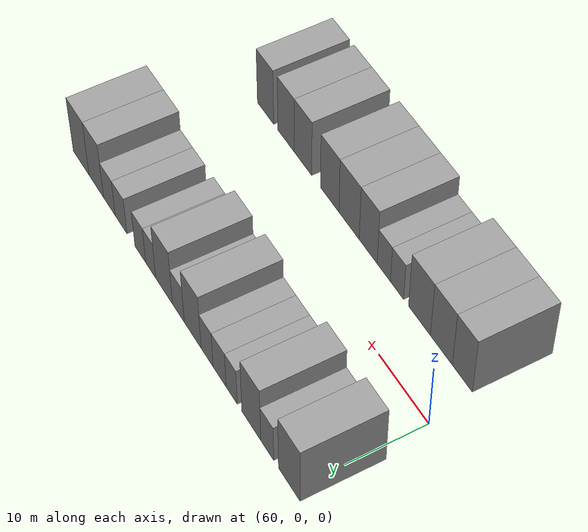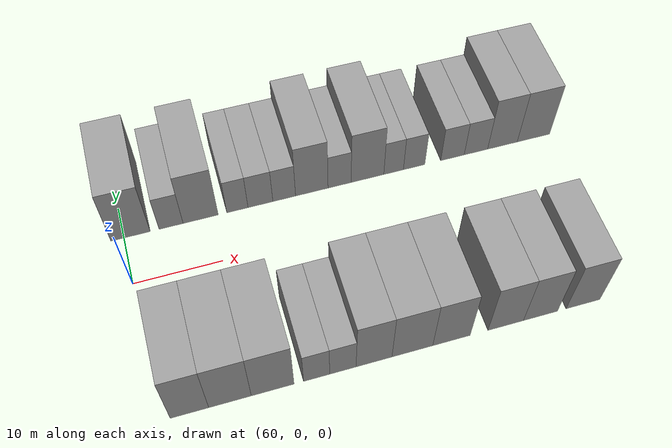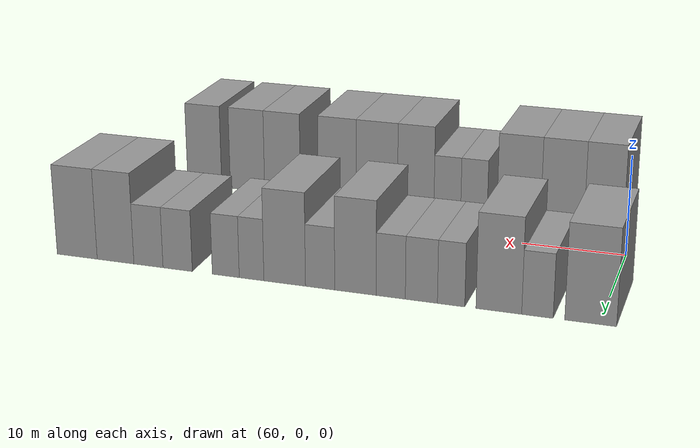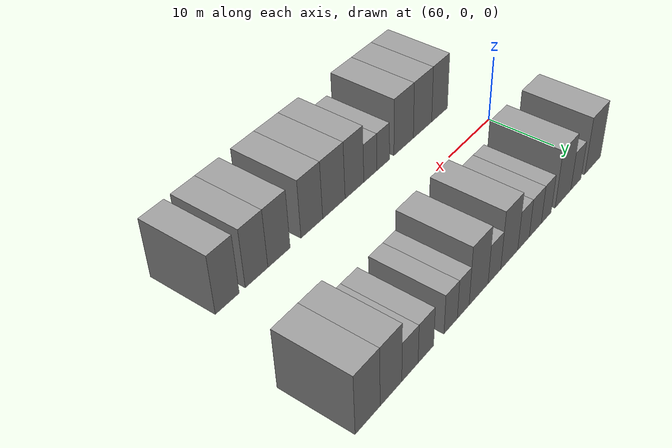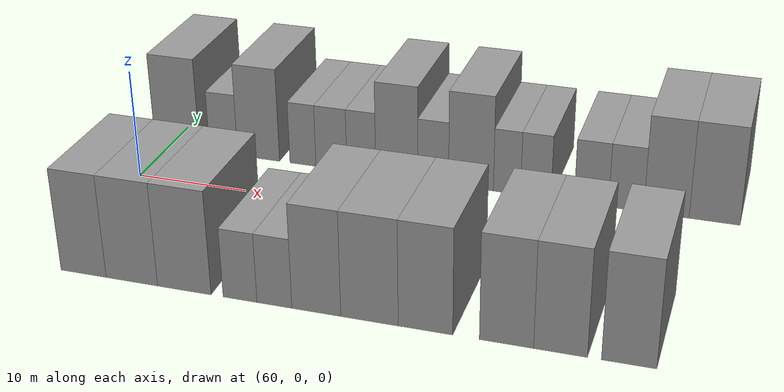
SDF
<sdf version="1.6">
 <world name="default">
  <model name="building_13">
   <static>1</static>
   <pose>60.7514 11.0000 0 0.000000 0.000000 1.570796</pose>
   <link name="link">
    <pose>0 0 4.50 0 0 0</pose>
    <collision name="collision"><geometry><box><size>10.0000 4.4428 9.0000</size></box></geometry></collision>
    <visual name="visual">
     <cast_shadows>0</cast_shadows>
     <geometry><box><size>10.0000 4.4428 9.0000</size></box></geometry>
     <material>
      <script>
       <uri>model://grey_wall/materials/scripts</uri>
       <uri>model://grey_wall/materials/textures</uri>
       <name>vrc/grey_wall</name>
      </script>
     </material>
    </visual>
   </link>
  </model>
  <model name="building_14">
   <static>1</static>
   <pose>65.3488 11.0000 0 0.000000 0.000000 1.570796</pose>
   <link name="link">
    <pose>0 0 3.00 0 0 0</pose>
    <collision name="collision"><geometry><box><size>10.0000 2.7521 6.0000</size></box></geometry></collision>
    <visual name="visual">
     <cast_shadows>0</cast_shadows>
     <geometry><box><size>10.0000 2.7521 6.0000</size></box></geometry>
     <material>
      <script>
       <uri>model://grey_wall/materials/scripts</uri>
       <uri>model://grey_wall/materials/textures</uri>
       <name>vrc/grey_wall</name>
      </script>
     </material>
    </visual>
   </link>
  </model>
  <model name="building_15">
   <static>1</static>
   <pose>68.7537 11.0000 0 0.000000 0.000000 1.570796</pose>
   <link name="link">
    <pose>0 0 4.50 0 0 0</pose>
    <collision name="collision"><geometry><box><size>10.0000 4.0577 9.0000</size></box></geometry></collision>
    <visual name="visual">
     <cast_shadows>0</cast_shadows>
     <geometry><box><size>10.0000 4.0577 9.0000</size></box></geometry>
     <material>
      <script>
       <uri>model://grey_wall/materials/scripts</uri>
       <uri>model://grey_wall/materials/textures</uri>
       <name>vrc/grey_wall</name>
      </script>
     </material>
    </visual>
   </link>
  </model>
  <model name="building_16">
   <static>1</static>
   <pose>73.0201 11.0000 0 0.000000 0.000000 1.570796</pose>
   <link name="link">
    <pose>0 0 3.00 0 0 0</pose>
    <collision name="collision"><geometry><box><size>10.0000 2.4750 6.0000</size></box></geometry></collision>
    <visual name="visual">
     <cast_shadows>0</cast_shadows>
     <geometry><box><size>10.0000 2.4750 6.0000</size></box></geometry>
     <material>
      <script>
       <uri>model://grey_wall/materials/scripts</uri>
       <uri>model://grey_wall/materials/textures</uri>
       <name>vrc/grey_wall</name>
      </script>
     </material>
    </visual>
   </link>
  </model>
  <model name="building_17">
   <static>1</static>
   <pose>75.7228 11.0000 0 0.000000 0.000000 1.570796</pose>
   <link name="link">
    <pose>0 0 3.00 0 0 0</pose>
    <collision name="collision"><geometry><box><size>10.0000 2.9305 6.0000</size></box></geometry></collision>
    <visual name="visual">
     <cast_shadows>0</cast_shadows>
     <geometry><box><size>10.0000 2.9305 6.0000</size></box></geometry>
     <material>
      <script>
       <uri>model://grey_wall/materials/scripts</uri>
       <uri>model://grey_wall/materials/textures</uri>
       <name>vrc/grey_wall</name>
      </script>
     </material>
    </visual>
   </link>
  </model>
  <model name="building_18">
   <static>1</static>
   <pose>78.5389 11.0000 0 0.000000 0.000000 1.570796</pose>
   <link name="link">
    <pose>0 0 3.00 0 0 0</pose>
    <collision name="collision"><geometry><box><size>10.0000 2.7016 6.0000</size></box></geometry></collision>
    <visual name="visual">
     <cast_shadows>0</cast_shadows>
     <geometry><box><size>10.0000 2.7016 6.0000</size></box></geometry>
     <material>
      <script>
       <uri>model://grey_wall/materials/scripts</uri>
       <uri>model://grey_wall/materials/textures</uri>
       <name>vrc/grey_wall</name>
      </script>
     </material>
    </visual>
   </link>
  </model>
  <model name="building_19">
   <static>1</static>
   <pose>81.8342 11.0000 0 0.000000 0.000000 1.570796</pose>
   <link name="link">
    <pose>0 0 4.50 0 0 0</pose>
    <collision name="collision"><geometry><box><size>10.0000 3.8890 9.0000</size></box></geometry></collision>
    <visual name="visual">
     <cast_shadows>0</cast_shadows>
     <geometry><box><size>10.0000 3.8890 9.0000</size></box></geometry>
     <material>
      <script>
       <uri>model://grey_wall/materials/scripts</uri>
       <uri>model://grey_wall/materials/textures</uri>
       <name>vrc/grey_wall</name>
      </script>
     </material>
    </visual>
   </link>
  </model>
  <model name="building_20">
   <static>1</static>
   <pose>85.1712 11.0000 0 0.000000 0.000000 1.570796</pose>
   <link name="link">
    <pose>0 0 3.00 0 0 0</pose>
    <collision name="collision"><geometry><box><size>10.0000 2.7850 6.0000</size></box></geometry></collision>
    <visual name="visual">
     <cast_shadows>0</cast_shadows>
     <geometry><box><size>10.0000 2.7850 6.0000</size></box></geometry>
     <material>
      <script>
       <uri>model://grey_wall/materials/scripts</uri>
       <uri>model://grey_wall/materials/textures</uri>
       <name>vrc/grey_wall</name>
      </script>
     </material>
    </visual>
   </link>
  </model>
  <model name="building_21">
   <static>1</static>
   <pose>88.5730 11.0000 0 0.000000 0.000000 1.570796</pose>
   <link name="link">
    <pose>0 0 4.50 0 0 0</pose>
    <collision name="collision"><geometry><box><size>10.0000 4.0187 9.0000</size></box></geometry></collision>
    <visual name="visual">
     <cast_shadows>0</cast_shadows>
     <geometry><box><size>10.0000 4.0187 9.0000</size></box></geometry>
     <material>
      <script>
       <uri>model://grey_wall/materials/scripts</uri>
       <uri>model://grey_wall/materials/textures</uri>
       <name>vrc/grey_wall</name>
      </script>
     </material>
    </visual>
   </link>
  </model>
  <model name="building_22">
   <static>1</static>
   <pose>91.7902 11.0000 0 0.000000 0.000000 1.570796</pose>
   <link name="link">
    <pose>0 0 3.00 0 0 0</pose>
    <collision name="collision"><geometry><box><size>10.0000 2.4156 6.0000</size></box></geometry></collision>
    <visual name="visual">
     <cast_shadows>0</cast_shadows>
     <geometry><box><size>10.0000 2.4156 6.0000</size></box></geometry>
     <material>
      <script>
       <uri>model://grey_wall/materials/scripts</uri>
       <uri>model://grey_wall/materials/textures</uri>
       <name>vrc/grey_wall</name>
      </script>
     </material>
    </visual>
   </link>
  </model>
  <model name="building_23">
   <static>1</static>
   <pose>94.3314 11.0000 0 0.000000 0.000000 1.570796</pose>
   <link name="link">
    <pose>0 0 3.00 0 0 0</pose>
    <collision name="collision"><geometry><box><size>10.0000 2.6670 6.0000</size></box></geometry></collision>
    <visual name="visual">
     <cast_shadows>0</cast_shadows>
     <geometry><box><size>10.0000 2.6670 6.0000</size></box></geometry>
     <material>
      <script>
       <uri>model://grey_wall/materials/scripts</uri>
       <uri>model://grey_wall/materials/textures</uri>
       <name>vrc/grey_wall</name>
      </script>
     </material>
    </visual>
   </link>
  </model>
  <model name="building_24">
   <static>1</static>
   <pose>99.1431 11.0000 0 0.000000 0.000000 1.570796</pose>
   <link name="link">
    <pose>0 0 3.00 0 0 0</pose>
    <collision name="collision"><geometry><box><size>10.0000 2.9564 6.0000</size></box></geometry></collision>
    <visual name="visual">
     <cast_shadows>0</cast_shadows>
     <geometry><box><size>10.0000 2.9564 6.0000</size></box></geometry>
     <material>
      <script>
       <uri>model://grey_wall/materials/scripts</uri>
       <uri>model://grey_wall/materials/textures</uri>
       <name>vrc/grey_wall</name>
      </script>
     </material>
    </visual>
   </link>
  </model>
  <model name="building_25">
   <static>1</static>
   <pose>102.1106 11.0000 0 0.000000 0.000000 1.570796</pose>
   <link name="link">
    <pose>0 0 3.00 0 0 0</pose>
    <collision name="collision"><geometry><box><size>10.0000 2.9786 6.0000</size></box></geometry></collision>
    <visual name="visual">
     <cast_shadows>0</cast_shadows>
     <geometry><box><size>10.0000 2.9786 6.0000</size></box></geometry>
     <material>
      <script>
       <uri>model://grey_wall/materials/scripts</uri>
       <uri>model://grey_wall/materials/textures</uri>
       <name>vrc/grey_wall</name>
      </script>
     </material>
    </visual>
   </link>
  </model>
  <model name="building_26">
   <static>1</static>
   <pose>105.5033 11.0000 0 0.000000 0.000000 1.570796</pose>
   <link name="link">
    <pose>0 0 4.50 0 0 0</pose>
    <collision name="collision"><geometry><box><size>10.0000 3.8068 9.0000</size></box></geometry></collision>
    <visual name="visual">
     <cast_shadows>0</cast_shadows>
     <geometry><box><size>10.0000 3.8068 9.0000</size></box></geometry>
     <material>
      <script>
       <uri>model://grey_wall/materials/scripts</uri>
       <uri>model://grey_wall/materials/textures</uri>
       <name>vrc/grey_wall</name>
      </script>
     </material>
    </visual>
   </link>
  </model>
  <model name="building_27">
   <static>1</static>
   <pose>109.5099 11.0000 0 0.000000 0.000000 1.570796</pose>
   <link name="link">
    <pose>0 0 4.50 0 0 0</pose>
    <collision name="collision"><geometry><box><size>10.0000 4.2064 9.0000</size></box></geometry></collision>
    <visual name="visual">
     <cast_shadows>0</cast_shadows>
     <geometry><box><size>10.0000 4.2064 9.0000</size></box></geometry>
     <material>
      <script>
       <uri>model://grey_wall/materials/scripts</uri>
       <uri>model://grey_wall/materials/textures</uri>
       <name>vrc/grey_wall</name>
      </script>
     </material>
    </visual>
   </link>
  </model>
  <model name="building_66">
   <static>1</static>
   <pose>63.0855 -11.0000 0 0.000000 0.000000 1.570796</pose>
   <link name="link">
    <pose>0 0 4.50 0 0 0</pose>
    <collision name="collision"><geometry><box><size>10.0000 3.9080 9.0000</size></box></geometry></collision>
    <visual name="visual">
     <cast_shadows>0</cast_shadows>
     <geometry><box><size>10.0000 3.9080 9.0000</size></box></geometry>
     <material>
      <script>
       <uri>model://grey_wall/materials/scripts</uri>
       <uri>model://grey_wall/materials/textures</uri>
       <name>vrc/grey_wall</name>
      </script>
     </material>
    </visual>
   </link>
  </model>
  <model name="building_67">
   <static>1</static>
   <pose>67.2296 -11.0000 0 0.000000 0.000000 1.570796</pose>
   <link name="link">
    <pose>0 0 4.50 0 0 0</pose>
    <collision name="collision"><geometry><box><size>10.0000 4.3804 9.0000</size></box></geometry></collision>
    <visual name="visual">
     <cast_shadows>0</cast_shadows>
     <geometry><box><size>10.0000 4.3804 9.0000</size></box></geometry>
     <material>
      <script>
       <uri>model://grey_wall/materials/scripts</uri>
       <uri>model://grey_wall/materials/textures</uri>
       <name>vrc/grey_wall</name>
      </script>
     </material>
    </visual>
   </link>
  </model>
  <model name="building_68">
   <static>1</static>
   <pose>71.6520 -11.0000 0 0.000000 0.000000 1.570796</pose>
   <link name="link">
    <pose>0 0 4.50 0 0 0</pose>
    <collision name="collision"><geometry><box><size>10.0000 4.4644 9.0000</size></box></geometry></collision>
    <visual name="visual">
     <cast_shadows>0</cast_shadows>
     <geometry><box><size>10.0000 4.4644 9.0000</size></box></geometry>
     <material>
      <script>
       <uri>model://grey_wall/materials/scripts</uri>
       <uri>model://grey_wall/materials/textures</uri>
       <name>vrc/grey_wall</name>
      </script>
     </material>
    </visual>
   </link>
  </model>
  <model name="building_69">
   <static>1</static>
   <pose>76.2661 -11.0000 0 0.000000 0.000000 1.570796</pose>
   <link name="link">
    <pose>0 0 3.00 0 0 0</pose>
    <collision name="collision"><geometry><box><size>10.0000 2.7637 6.0000</size></box></geometry></collision>
    <visual name="visual">
     <cast_shadows>0</cast_shadows>
     <geometry><box><size>10.0000 2.7637 6.0000</size></box></geometry>
     <material>
      <script>
       <uri>model://grey_wall/materials/scripts</uri>
       <uri>model://grey_wall/materials/textures</uri>
       <name>vrc/grey_wall</name>
      </script>
     </material>
    </visual>
   </link>
  </model>
  <model name="building_70">
   <static>1</static>
   <pose>79.0561 -11.0000 0 0.000000 0.000000 1.570796</pose>
   <link name="link">
    <pose>0 0 3.00 0 0 0</pose>
    <collision name="collision"><geometry><box><size>10.0000 2.8163 6.0000</size></box></geometry></collision>
    <visual name="visual">
     <cast_shadows>0</cast_shadows>
     <geometry><box><size>10.0000 2.8163 6.0000</size></box></geometry>
     <material>
      <script>
       <uri>model://grey_wall/materials/scripts</uri>
       <uri>model://grey_wall/materials/textures</uri>
       <name>vrc/grey_wall</name>
      </script>
     </material>
    </visual>
   </link>
  </model>
  <model name="building_71">
   <static>1</static>
   <pose>82.4078 -11.0000 0 0.000000 0.000000 1.570796</pose>
   <link name="link">
    <pose>0 0 4.50 0 0 0</pose>
    <collision name="collision"><geometry><box><size>10.0000 3.8872 9.0000</size></box></geometry></collision>
    <visual name="visual">
     <cast_shadows>0</cast_shadows>
     <geometry><box><size>10.0000 3.8872 9.0000</size></box></geometry>
     <material>
      <script>
       <uri>model://grey_wall/materials/scripts</uri>
       <uri>model://grey_wall/materials/textures</uri>
       <name>vrc/grey_wall</name>
      </script>
     </material>
    </visual>
   </link>
  </model>
  <model name="building_72">
   <static>1</static>
   <pose>86.5895 -11.0000 0 0.000000 0.000000 1.570796</pose>
   <link name="link">
    <pose>0 0 4.50 0 0 0</pose>
    <collision name="collision"><geometry><box><size>10.0000 4.4761 9.0000</size></box></geometry></collision>
    <visual name="visual">
     <cast_shadows>0</cast_shadows>
     <geometry><box><size>10.0000 4.4761 9.0000</size></box></geometry>
     <material>
      <script>
       <uri>model://grey_wall/materials/scripts</uri>
       <uri>model://grey_wall/materials/textures</uri>
       <name>vrc/grey_wall</name>
      </script>
     </material>
    </visual>
   </link>
  </model>
  <model name="building_73">
   <static>1</static>
   <pose>90.9068 -11.0000 0 0.000000 0.000000 1.570796</pose>
   <link name="link">
    <pose>0 0 4.50 0 0 0</pose>
    <collision name="collision"><geometry><box><size>10.0000 4.1585 9.0000</size></box></geometry></collision>
    <visual name="visual">
     <cast_shadows>0</cast_shadows>
     <geometry><box><size>10.0000 4.1585 9.0000</size></box></geometry>
     <material>
      <script>
       <uri>model://grey_wall/materials/scripts</uri>
       <uri>model://grey_wall/materials/textures</uri>
       <name>vrc/grey_wall</name>
      </script>
     </material>
    </visual>
   </link>
  </model>
  <model name="building_74">
   <static>1</static>
   <pose>96.9960 -11.0000 0 0.000000 0.000000 1.570796</pose>
   <link name="link">
    <pose>0 0 4.50 0 0 0</pose>
    <collision name="collision"><geometry><box><size>10.0000 4.0198 9.0000</size></box></geometry></collision>
    <visual name="visual">
     <cast_shadows>0</cast_shadows>
     <geometry><box><size>10.0000 4.0198 9.0000</size></box></geometry>
     <material>
      <script>
       <uri>model://grey_wall/materials/scripts</uri>
       <uri>model://grey_wall/materials/textures</uri>
       <name>vrc/grey_wall</name>
      </script>
     </material>
    </visual>
   </link>
  </model>
  <model name="building_75">
   <static>1</static>
   <pose>100.9630 -11.0000 0 0.000000 0.000000 1.570796</pose>
   <link name="link">
    <pose>0 0 4.50 0 0 0</pose>
    <collision name="collision"><geometry><box><size>10.0000 3.9142 9.0000</size></box></geometry></collision>
    <visual name="visual">
     <cast_shadows>0</cast_shadows>
     <geometry><box><size>10.0000 3.9142 9.0000</size></box></geometry>
     <material>
      <script>
       <uri>model://grey_wall/materials/scripts</uri>
       <uri>model://grey_wall/materials/textures</uri>
       <name>vrc/grey_wall</name>
      </script>
     </material>
    </visual>
   </link>
  </model>
  <model name="building_76">
   <static>1</static>
   <pose>105.8901 -11.0000 0 0.000000 0.000000 1.570796</pose>
   <link name="link">
    <pose>0 0 4.50 0 0 0</pose>
    <collision name="collision"><geometry><box><size>10.0000 3.9400 9.0000</size></box></geometry></collision>
    <visual name="visual">
     <cast_shadows>0</cast_shadows>
     <geometry><box><size>10.0000 3.9400 9.0000</size></box></geometry>
     <material>
      <script>
       <uri>model://grey_wall/materials/scripts</uri>
       <uri>model://grey_wall/materials/textures</uri>
       <name>vrc/grey_wall</name>
      </script>
     </material>
    </visual>
   </link>
  </model>
 </world>
</sdf>
